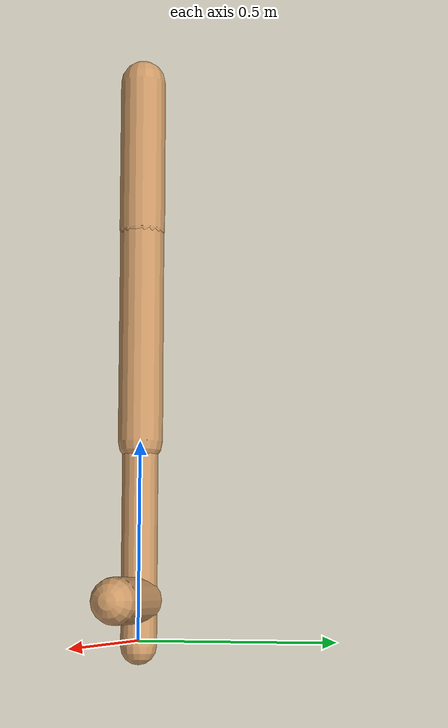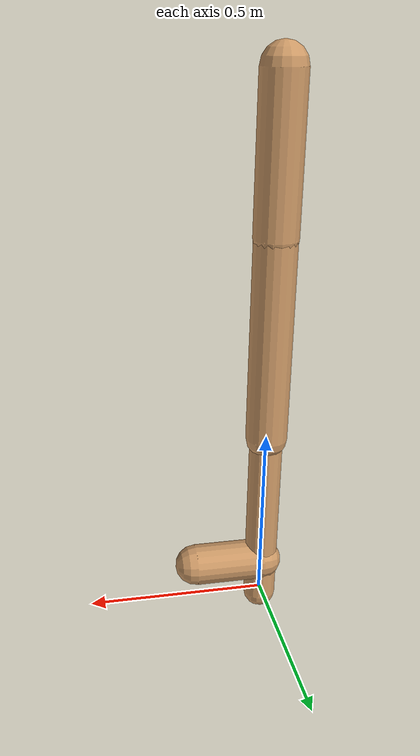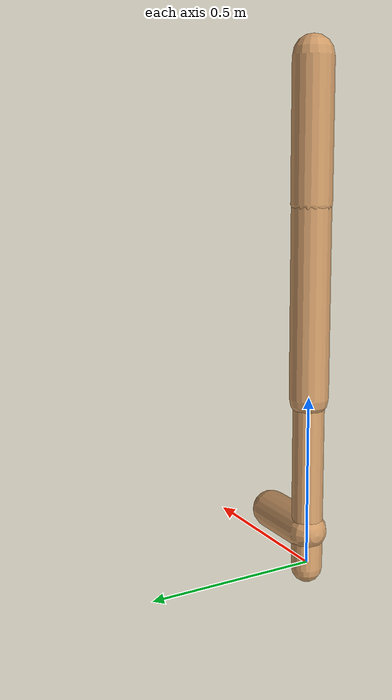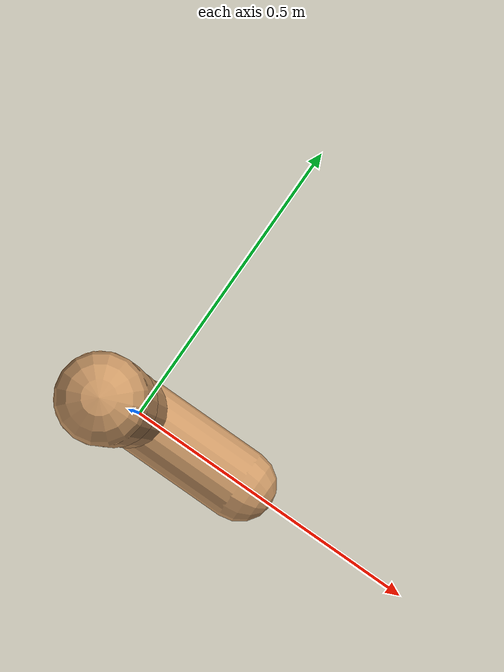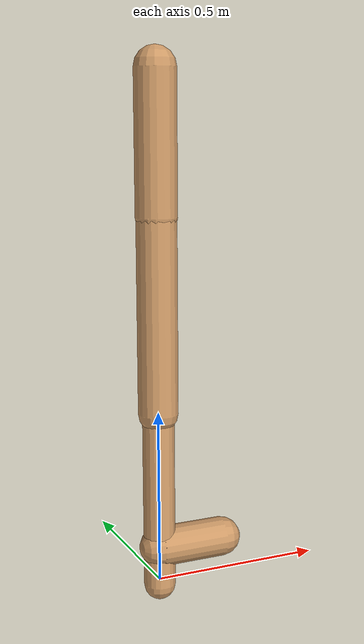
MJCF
<mujoco model="walker2d">
  <compiler angle="degree" coordinate="global" inertiafromgeom="true" />
  <default>
    <joint armature="0.01" damping=".1" limited="true" />
    <geom conaffinity="0" condim="3" contype="1" density="1000" friction="0.8 .1 .1" rgba="0.8 0.6 .4 1" />
  </default>
  <option integrator="RK4" timestep="0.002" />
  <worldbody>

    <body name="torso" pos="0 0 0.2148077811172609">
      <joint armature="0" axis="1 0 0" damping="0" limited="false" name="ignorex" pos="0 0 0" stiffness="0" type="slide" />
      <joint armature="0" axis="0 0 1" damping="0" limited="false" name="ignorez" pos="0 0 0" ref="1.25" stiffness="0" type="slide" />
      <joint armature="0" axis="0 1 0" damping="0" limited="false" name="ignorey" pos="0 0 0" stiffness="0" type="hinge" />
      <geom fromto="0 0 1.45 0 0 1.05" name="torso_geom" size="0.0585661404256225" type="capsule" />
      <body name="thigh">
        <joint axis="0 -1 0" name="thigh_joint" pos="0 0 1.05" range="-150 0" type="hinge" />
        <geom fromto="0.0 0.0 1.05 0.0 0.0 0.4982489457865606" name="thigh_geom" size="0.05685414573503115" type="capsule" />
        <body name="leg" pos="0.0 0.0 -0.10175105421343938">
          <joint axis="0 -1 0" name="leg_joint" pos="0 0 0.6" range="-150 0" type="hinge" />
          <geom fromto="0.0 0.0 0.6 0.0 0.0 -0.013056726903821508" name="leg_geom" size="0.045483316588024916" type="capsule" />
          <body name="foot" pos="0.0 0.0 -0.11305672690382151">
            <joint axis="0 -1 0" name="foot_joint" pos="0 0 0.1" range="-45 45" type="hinge" />
            <geom fromto="0.0 0.0 0.1 0.19452052617009 0.0 0.1" name="foot_geom" size="0.0577535167327434" type="capsule" />
          </body>
        </body>
      </body>

      <body name="thigh_left">
        <joint axis="0 -1 0" name="thigh_left_joint" pos="0 0 1.05" range="-150 0" type="hinge" />
        <geom fromto="0.0 0.0 1.05 0.0 0.0 0.4982489457865606" name="thigh_left_geom" rgba=".7 .3 .6 1" size="0.05685414573503115" type="capsule" />
        <body name="leg_left" pos="0.0 0.0 -0.10175105421343938">
          <joint axis="0 -1 0" name="leg_left_joint" pos="0 0 0.6" range="-150 0" type="hinge" />
          <geom fromto="0.0 0.0 0.6 0.0 0.0 -0.013056726903821508" name="leg_left_geom" rgba=".7 .3 .6 1" size="0.045483316588024916" type="capsule" />
          <body name="foot_left" pos="0.0 0.0 -0.11305672690382151">
            <joint axis="0 -1 0" name="foot_left_joint" pos="0 0 0.1" range="-45 45" type="hinge" />
            <geom fromto="0.0 0.0 0.1 0.19452052617009 0.0 0.1" name="foot_left_geom" rgba=".7 .3 .6 1" size="0.0577535167327434" type="capsule" />
          </body>
        </body>
      </body>
    </body>
  </worldbody>
  <actuator>

    <motor ctrllimited="true" ctrlrange="-1.0 1.0" gear="100" joint="thigh_joint" />
    <motor ctrllimited="true" ctrlrange="-1.0 1.0" gear="100" joint="leg_joint" />
    <motor ctrllimited="true" ctrlrange="-1.0 1.0" gear="100" joint="foot_joint" />
    <motor ctrllimited="true" ctrlrange="-1.0 1.0" gear="100" joint="thigh_left_joint" />
    <motor ctrllimited="true" ctrlrange="-1.0 1.0" gear="100" joint="leg_left_joint" />
    <motor ctrllimited="true" ctrlrange="-1.0 1.0" gear="100" joint="foot_left_joint" />

  </actuator>
</mujoco>
